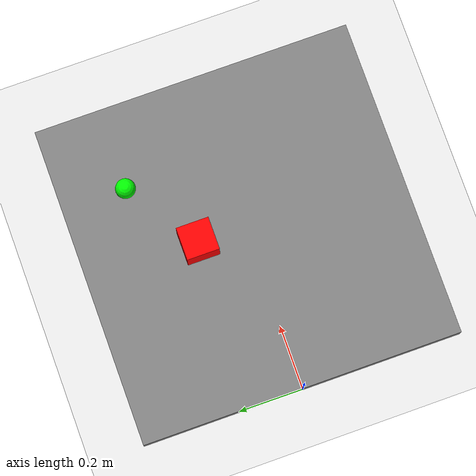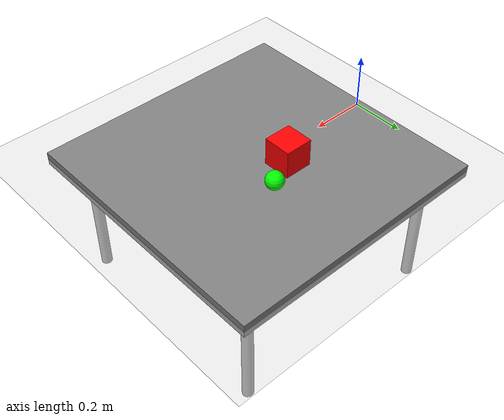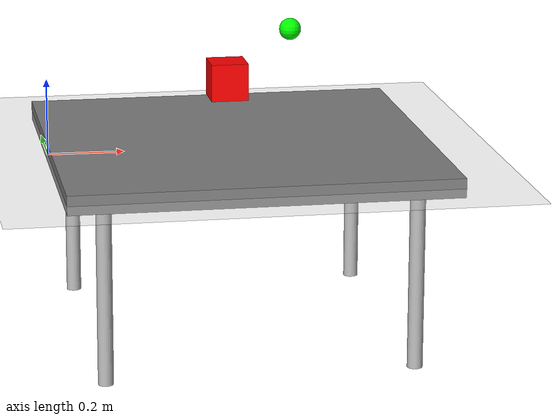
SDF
<?xml version="1.0"?>
<sdf version="1.6">
  <world name="ur5e_tabletop_world">
    <!-- Include the default physics settings -->
    <include>
      <uri>model://sun</uri>
    </include>
    <include>
      <uri>model://ground_plane</uri>
    </include>

    <!-- Table for the UR5e robot -->
    <model name="table">
      <static>true</static>
      <pose>0.5 0.0 0.0 0 0 0</pose>
      <link name="table_link">
        <collision name="table_collision">
          <geometry>
            <box>
              <size>1.0 1.0 0.05</size>
            </box>
          </geometry>
        </collision>
        <visual name="table_visual">
          <geometry>
            <box>
              <size>1.0 1.0 0.05</size>
            </box>
          </geometry>
          <material>
            <ambient>0.5 0.5 0.5 1</ambient>
            <diffuse>0.5 0.5 0.5 1</diffuse>
          </material>
        </visual>
        <!-- Table legs -->
        <visual name="leg1_visual">
          <pose>0.4 0.4 -0.25 0 0 0</pose>
          <geometry>
            <cylinder>
              <radius>0.02</radius>
              <length>0.5</length>
            </cylinder>
          </geometry>
        </visual>
        <visual name="leg2_visual">
          <pose>0.4 -0.4 -0.25 0 0 0</pose>
          <geometry>
            <cylinder>
              <radius>0.02</radius>
              <length>0.5</length>
            </cylinder>
          </geometry>
        </visual>
        <visual name="leg3_visual">
          <pose>-0.4 0.4 -0.25 0 0 0</pose>
          <geometry>
            <cylinder>
              <radius>0.02</radius>
              <length>0.5</length>
            </cylinder>
          </geometry>
        </visual>
        <visual name="leg4_visual">
          <pose>-0.4 -0.4 -0.25 0 0 0</pose>
          <geometry>
            <cylinder>
              <radius>0.02</radius>
              <length>0.5</length>
            </cylinder>
          </geometry>
        </visual>
      </link>
    </model>

    <!-- Target sphere for end-effector -->
    <model name="target_sphere">
      <static>true</static>
      <pose>0.7 0.3 0.25 0 0 0</pose>
      <link name="target_link">
        <visual name="visual">
          <geometry>
            <sphere>
              <radius>0.03</radius>
            </sphere>
          </geometry>
          <material>
            <ambient>0 1 0 1</ambient>
            <diffuse>0 1 0 1</diffuse>
            <emissive>0 0.1 0 1</emissive>
          </material>
        </visual>
        <collision name="collision">
          <geometry>
            <sphere>
              <radius>0.03</radius>
            </sphere>
          </geometry>
        </collision>
      </link>
    </model>

    <!-- Obstacle cube -->
    <model name="obstacle_cube">
      <static>true</static>
      <pose>0.5 0.15 0.15 0 0 0</pose>
      <link name="obstacle_link">
        <visual name="visual">
          <geometry>
            <box>
              <size>0.1 0.1 0.1</size>
            </box>
          </geometry>
          <material>
            <ambient>1 0 0 1</ambient>
            <diffuse>1 0 0 1</diffuse>
            <emissive>0.1 0 0 1</emissive>
          </material>
        </visual>
        <collision name="collision">
          <geometry>
            <box>
              <size>0.1 0.1 0.1</size>
            </box>
          </geometry>
        </collision>
      </link>
    </model>
  </world>
</sdf>
